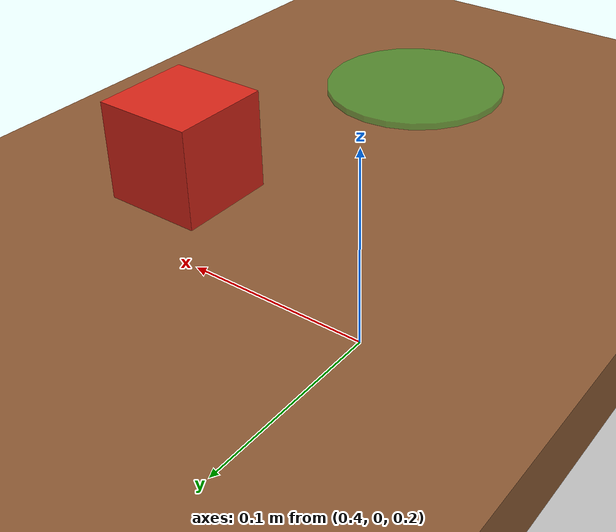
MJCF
<mujoco model="panda pick scene additions">
  <worldbody>
    <light
      name="scene_light"
      pos="0.4 -0.4 1.5"
      dir="0.1 0.1 -1"
      directional="true"
    />

    <geom
      name="floor"
      type="plane"
      size="2 2 0.05"
      rgba="0.75 0.75 0.75 1"
      friction="1 0.005 0.0001"
    />

    <body name="table" pos="0.50 0 0.20">
      <geom
        name="table_top"
        type="box"
        size="0.30 0.35 0.02"
        rgba="0.55 0.35 0.20 1"
        friction="1 0.005 0.0001"
      />
    </body>

    <body name="cube" pos="0.50 0 0.27">
      <freejoint name="cube_free_joint"/>

      <geom
        name="cube_geom"
        type="box"
        size="0.025 0.025 0.025"
        mass="0.10"
        rgba="0.85 0.15 0.10 1"
        friction="1.2 0.01 0.001"
      />
    </body>

    <site
      name="place_target"
      type="cylinder"
      pos="0.50 -0.20 0.223"
      size="0.055 0.002"
      rgba="0.10 0.80 0.20 0.45"
    />
  </worldbody>
</mujoco>
